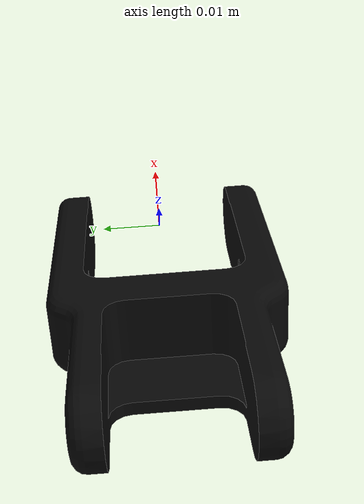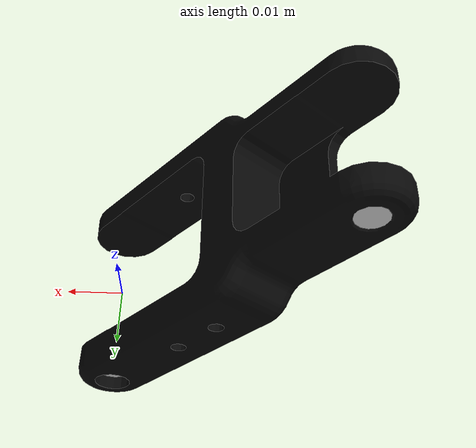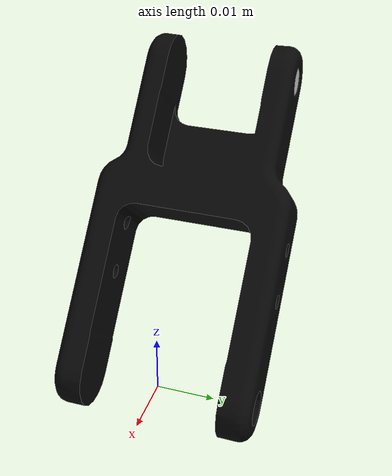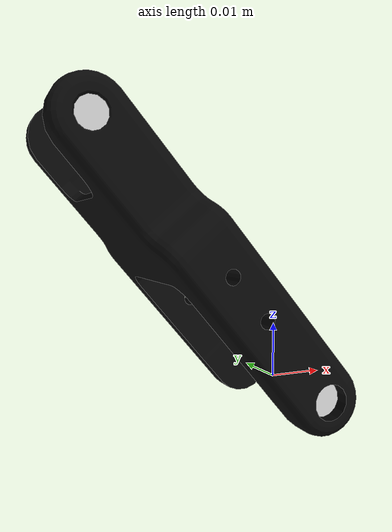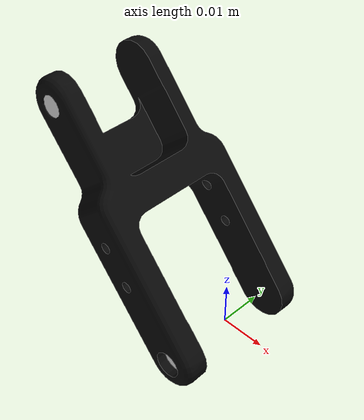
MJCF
<mujoco model="right_inner_knuckle">
  <default>
    <default class="visual">
      <geom group="2" type="mesh" contype="0" conaffinity="0"/>
    </default>
    <default class="collision">
      <geom group="3" type="mesh"/>
    </default>
  </default>
  <asset>
    <material name="material_right_inner_knuckle_0" specular="0.20000000000000004" shininess="1.0" rgba="0.03137255 0.03137255 0.03137255 1.0"/>
    <material name="material_right_inner_knuckle_1" specular="0.20000000000000004" shininess="1.0" rgba="0.80000000 0.80000000 0.80000000 1.0"/>
    <mesh file="right_inner_knuckle_0.obj"/>
    <mesh file="right_inner_knuckle_1.obj"/>
  </asset>
  <worldbody>
    <body name="right_inner_knuckle">
      <geom mesh="right_inner_knuckle_0" material="material_right_inner_knuckle_1" class="visual"/>
      <geom mesh="right_inner_knuckle_1" material="material_right_inner_knuckle_0" class="visual"/>
      <geom mesh="right_inner_knuckle_0" class="collision"/>
      <geom mesh="right_inner_knuckle_1" class="collision"/>
    </body>
  </worldbody>
</mujoco>
